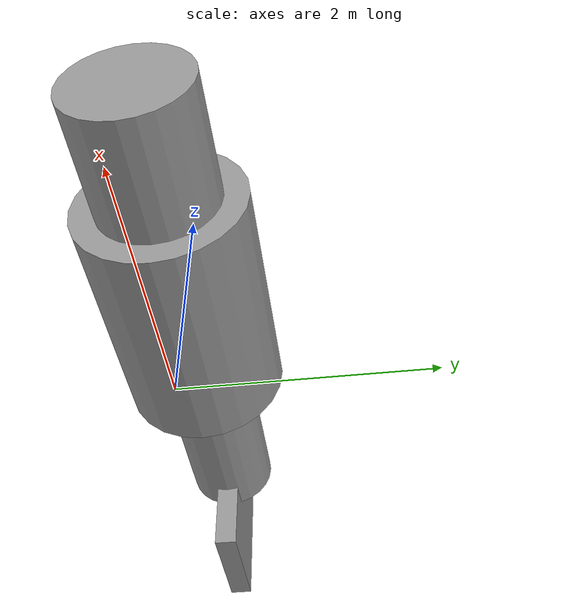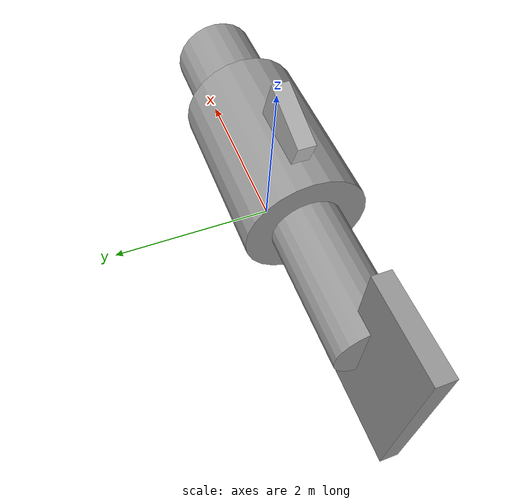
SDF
<?xml version="1.0"?>
<sdf version="1.4">
  <model name="shark">
    <pose>0 0 1 0 0 0</pose>
    <link name="body_front">
      <pose>0 0 0 0 1.5707 0</pose>
      <inertial>
        <mass>1000</mass>
        <inertia>
          <ixx>455</ixx>
          <iyy>455</iyy>
          <izz>245</izz>
        </inertia>
      </inertial>
      <collision name="collision">
        <geometry>
          <cylinder>
            <radius>0.7</radius>
            <length>2</length>
          </cylinder>
        </geometry>
        <surface>
          <contact><ode><min_depth>0.01</min_depth></ode></contact>
        </surface>
      </collision>
      <collision name="dorsal_fin_collision">
        <pose>-0.75 0 -0.3 0 -0.3 0</pose>
        <geometry>
          <box><size>0.75 0.2 0.75</size></box>
        </geometry>
      </collision>
      <visual name="visual">
        <geometry>
          <cylinder>
            <radius>0.7</radius>
            <length>2</length>
          </cylinder>
        </geometry>
        <material><script><name>Gazebo/Grey</name></script></material>
      </visual>
      <visual name="dorsal_fin_visual">
        <pose>-0.75 0 -0.3 0 -0.3 0</pose>
        <geometry>
          <box><size>0.75 0.2 0.75</size></box>
        </geometry>
      </visual>
    </link>
    <link name="body_back">
      <pose>-1.75 0 0 0 1.5707 0</pose>
      <inertial>
        <mass>750</mass>
        <inertia>
          <ixx>170</ixx>
          <iyy>170</iyy>
          <izz>60</izz>
        </inertia>
      </inertial>
      <collision name="collision">
        <geometry>
          <cylinder>
            <radius>0.4</radius>
            <length>1.5</length>
          </cylinder>
        </geometry>
        <surface>
          <contact><ode><min_depth>0.01</min_depth></ode></contact>
        </surface>
      </collision>
      <visual name="visual">
        <geometry>
          <cylinder>
            <radius>0.4</radius>
            <length>1.5</length>
          </cylinder>
        </geometry>
        <material><script><name>Gazebo/Grey</name></script></material>
      </visual>
    </link>
    <link name="head">
      <pose>1.5 0 0 0 1.5707 0</pose>
      <inertial><mass>50</mass></inertial>
      <collision name="collision">
        <geometry>
          <cylinder>
            <radius>0.5</radius>
            <length>1</length>
          </cylinder>
        </geometry>
        <surface>
          <contact><ode><min_depth>0.05</min_depth></ode></contact>
        </surface>
      </collision>
      <visual name="visual">
        <geometry>
          <cylinder>
            <radius>0.5</radius>
            <length>1</length>
          </cylinder>
        </geometry>
        <material><script><name>Gazebo/Grey</name></script></material>
      </visual>
    </link>
    <link name="tail">
      <pose>-2.75 0 0 0 0 0</pose>
      <inertial><mass>250</mass></inertial>
      <collision name="collision">
        <geometry><box><size>1 0.2 2</size></box></geometry>
        <surface>
          <contact><ode><min_depth>0.05</min_depth></ode></contact>
        </surface>
      </collision>
      <visual name="visual">
        <geometry><box><size>1 0.2 2</size></box></geometry>
        <material><script><name>Gazebo/Grey</name></script></material>
      </visual>
    </link>
    <joint name="head_yaw" type="revolute">
      <pose>0 0 -0.5 0 0 0</pose>
      <child>head</child>
      <parent>body_front</parent>
      <axis>
        <limit>
          <lower>-0.7</lower>
          <upper>0.7</upper>
        </limit>
        <xyz>0 0 1</xyz>
      </axis>
    </joint>
    <joint name="body_yaw" type="revolute">
      <pose>0 0 0.75 0 0 0</pose>
      <child>body_back</child>
      <parent>body_front</parent>
      <axis>
        <limit>
          <lower>-0.7</lower>
          <upper>0.7</upper>
        </limit>
        <xyz>0 0 1</xyz>
      </axis>
    </joint>
    <joint name="tail_yaw" type="revolute">
      <pose>0.5 0 0 0 0 0</pose>
      <child>tail</child>
      <parent>body_back</parent>
      <axis>
        <limit>
          <lower>-0.7</lower>
          <upper>0.7</upper>
        </limit>
        <xyz>0 0 1</xyz>
      </axis>
    </joint>
    <static>false</static>
  </model>

</sdf>
